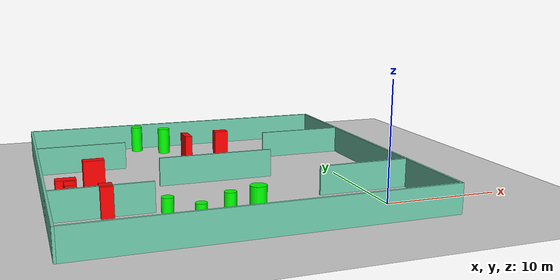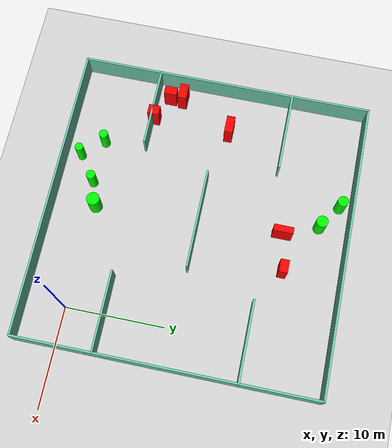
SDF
<sdf version="1.7">
 <world name="default">
  <light name="sun" type="directional">
   <pose>0 0 10 0 -0 0</pose>
   <diffuse>0.8 0.8 0.8 1</diffuse>
   <specular>0.2 0.2 0.2 1</specular>
   <attenuation>
    <range>1000</range>
    <constant>0.9</constant>
    <linear>0.01</linear>
    <quadratic>0.001</quadratic>
   </attenuation>
   <direction>-0.5 0.1 -0.9</direction>
   <spot><inner_angle>0</inner_angle><outer_angle>0</outer_angle><falloff>0</falloff></spot>
  </light>
  <model name="ground_plane">
   <static>1</static>
   <link name="link">
    <collision name="collision">
     <geometry><plane><normal>0 0 1</normal><size>100 100</size></plane></geometry>
     <surface>
      <contact><collide_bitmask>65535</collide_bitmask></contact>
      <friction><ode><mu>100</mu><mu2>50</mu2></ode></friction>
     </surface>
    </collision>
    <visual name="visual">
     <cast_shadows>0</cast_shadows>
     <geometry><plane><normal>0 0 1</normal><size>100 100</size></plane></geometry>
     <material>
      <script><uri>file://media/materials/scripts/gazebo.material</uri><name>Gazebo/Grey</name></script>
     </material>
    </visual>
   </link>
  </model>
  <gravity>0 0 -9.8</gravity>
  <magnetic_field>6e-06 2.3e-05 -4.2e-05</magnetic_field>
  <atmosphere type="adiabatic"/>
  <physics type="ode">
   <max_step_size>0.001</max_step_size>
   <real_time_factor>1</real_time_factor>
   <real_time_update_rate>1000</real_time_update_rate>
  </physics>
  <scene><ambient>0.4 0.4 0.4 1</ambient><background>0.7 0.7 0.7 1</background><shadows>1</shadows></scene>
  <spherical_coordinates>
   <surface_model>EARTH_WGS84</surface_model>
   <latitude_deg>0</latitude_deg>
   <longitude_deg>0</longitude_deg>
   <elevation>0</elevation>
   <heading_deg>0</heading_deg>
  </spherical_coordinates>
  <model name="my_base_walls">
   <link name="Wall_10">
    <collision name="Wall_10_Collision">
     <geometry><box><size>8.2 0.2 2.5</size></box></geometry>
     <pose>0 0 1.25 0 -0 0</pose>
    </collision>
    <visual name="Wall_10_Visual">
     <pose>0 0 1.25 0 -0 0</pose>
     <geometry><box><size>8.2 0.2 2.5</size></box></geometry>
     <material>
      <script><uri>file://media/materials/scripts/gazebo.material</uri><name>Gazebo/Grey</name></script>
      <ambient>0.435294 0.796078 0.67451 1</ambient>
     </material>
     <meta><layer>0</layer></meta>
    </visual>
    <pose>-11 -7 0 0 -0 0</pose>
   </link>
   <link name="Wall_12">
    <collision name="Wall_12_Collision">
     <geometry><box><size>8.2 0.2 2.5</size></box></geometry>
     <pose>0 0 1.25 0 -0 0</pose>
    </collision>
    <visual name="Wall_12_Visual">
     <pose>0 0 1.25 0 -0 0</pose>
     <geometry><box><size>8.2 0.2 2.5</size></box></geometry>
     <material>
      <script><uri>file://media/materials/scripts/gazebo.material</uri><name>Gazebo/Grey</name></script>
      <ambient>0.435294 0.796078 0.67451 1</ambient>
     </material>
     <meta><layer>0</layer></meta>
    </visual>
    <pose>-11 7 0 0 -0 0</pose>
   </link>
   <link name="Wall_14">
    <collision name="Wall_14_Collision">
     <geometry><box><size>8.2 0.2 2.5</size></box></geometry>
     <pose>0 0 1.25 0 -0 0</pose>
    </collision>
    <visual name="Wall_14_Visual">
     <pose>0 0 1.25 0 -0 0</pose>
     <geometry><box><size>8.2 0.2 2.5</size></box></geometry>
     <material>
      <script><uri>file://media/materials/scripts/gazebo.material</uri><name>Gazebo/Grey</name></script>
      <ambient>0.435294 0.796078 0.67451 1</ambient>
     </material>
     <meta><layer>0</layer></meta>
    </visual>
    <pose>11 7 0 0 -0 3.14159</pose>
   </link>
   <link name="Wall_16">
    <collision name="Wall_16_Collision">
     <geometry><box><size>10.2 0.2 2.5</size></box></geometry>
     <pose>0 0 1.25 0 -0 0</pose>
    </collision>
    <visual name="Wall_16_Visual">
     <pose>0 0 1.25 0 -0 0</pose>
     <geometry><box><size>10.2 0.2 2.5</size></box></geometry>
     <material>
      <script><uri>file://media/materials/scripts/gazebo.material</uri><name>Gazebo/Grey</name></script>
      <ambient>0.435294 0.796078 0.67451 1</ambient>
     </material>
     <meta><layer>0</layer></meta>
    </visual>
    <pose>0 0 0 0 -0 3.14159</pose>
   </link>
   <link name="Wall_2">
    <collision name="Wall_2_Collision">
     <geometry><box><size>30.2 0.2 2.5</size></box></geometry>
     <pose>0 0 1.25 0 -0 0</pose>
    </collision>
    <visual name="Wall_2_Visual">
     <pose>0 0 1.25 0 -0 0</pose>
     <geometry><box><size>30.2 0.2 2.5</size></box></geometry>
     <material>
      <script><uri>file://media/materials/scripts/gazebo.material</uri><name>Gazebo/Grey</name></script>
      <ambient>0.435294 0.796078 0.67451 1</ambient>
     </material>
     <meta><layer>0</layer></meta>
    </visual>
    <pose>0 -15 0 0 -0 3.14159</pose>
   </link>
   <link name="Wall_3">
    <collision name="Wall_3_Collision">
     <geometry><box><size>30.2 0.2 2.5</size></box></geometry>
     <pose>0 0 1.25 0 -0 0</pose>
    </collision>
    <visual name="Wall_3_Visual">
     <pose>0 0 1.25 0 -0 0</pose>
     <geometry><box><size>30.2 0.2 2.5</size></box></geometry>
     <material>
      <script><uri>file://media/materials/scripts/gazebo.material</uri><name>Gazebo/Grey</name></script>
      <ambient>0.435294 0.796078 0.67451 1</ambient>
     </material>
     <meta><layer>0</layer></meta>
    </visual>
    <pose>-15 0 0 0 -0 1.5708</pose>
   </link>
   <link name="Wall_4">
    <collision name="Wall_4_Collision">
     <geometry><box><size>30.2 0.2 2.5</size></box></geometry>
     <pose>0 0 1.25 0 -0 0</pose>
    </collision>
    <visual name="Wall_4_Visual">
     <pose>0 0 1.25 0 -0 0</pose>
     <geometry><box><size>30.2 0.2 2.5</size></box></geometry>
     <material>
      <script><uri>file://media/materials/scripts/gazebo.material</uri><name>Gazebo/Grey</name></script>
      <ambient>0.435294 0.796078 0.67451 1</ambient>
     </material>
     <meta><layer>0</layer></meta>
    </visual>
    <pose>0 15 0 0 -0 0</pose>
   </link>
   <link name="Wall_6">
    <collision name="Wall_6_Collision">
     <geometry><box><size>30.2 0.2 2.5</size></box></geometry>
     <pose>0 0 1.25 0 -0 0</pose>
    </collision>
    <visual name="Wall_6_Visual">
     <pose>0 0 1.25 0 -0 0</pose>
     <geometry><box><size>30.2 0.2 2.5</size></box></geometry>
     <material>
      <script><uri>file://media/materials/scripts/gazebo.material</uri><name>Gazebo/Grey</name></script>
      <ambient>0.435294 0.796078 0.67451 1</ambient>
     </material>
     <meta><layer>0</layer></meta>
    </visual>
    <pose>15 0 0 0 -0 1.5708</pose>
   </link>
   <link name="Wall_8">
    <collision name="Wall_8_Collision">
     <geometry><box><size>8.2 0.2 2.5</size></box></geometry>
     <pose>0 0 1.25 0 -0 0</pose>
    </collision>
    <visual name="Wall_8_Visual">
     <pose>0 0 1.25 0 -0 0</pose>
     <geometry><box><size>8.2 0.2 2.5</size></box></geometry>
     <material>
      <script><uri>file://media/materials/scripts/gazebo.material</uri><name>Gazebo/Grey</name></script>
      <ambient>0.435294 0.796078 0.67451 1</ambient>
     </material>
     <meta><layer>0</layer></meta>
    </visual>
    <pose>11 -7 0 0 -0 3.14159</pose>
   </link>
   <static>1</static>
   <pose>-11 11 0 0 -0 0</pose>
  </model>
  <model name="cylinder1">
   <static>1</static>
   <link name="link">
    <inertial>
     <mass>1</mass>
     <inertia><ixx>0.5</ixx><ixy>0</ixy><ixz>0</ixz><iyy>0.5</iyy><iyz>0</iyz><izz>1</izz></inertia>
    </inertial>
    <collision name="collision">
     <geometry><cylinder><radius>0.4578771486237375</radius><length>2.5</length></cylinder></geometry>
    </collision>
    <visual name="visual">
     <geometry><cylinder><radius>0.4578771486237375</radius><length>2.5</length></cylinder></geometry>
     <material>
      <ambient>0 1 0 1</ambient>
      <diffuse>0 1 0 1</diffuse>
      <specular>0.1 0.1 0.1 1</specular>
      <emissive>0 0 0 0</emissive>
     </material>
    </visual>
   </link>
   <pose>-17.8768685657405 -0.2872481390425685 1.25 0 0 0</pose>
  </model>
  <model name="cylinder2">
   <static>1</static>
   <link name="link">
    <inertial>
     <mass>1</mass>
     <inertia><ixx>0.5</ixx><ixy>0</ixy><ixz>0</ixz><iyy>0.5</iyy><iyz>0</iyz><izz>1</izz></inertia>
    </inertial>
    <collision name="collision">
     <geometry><cylinder><radius>0.46499325214693693</radius><length>2.5</length></cylinder></geometry>
    </collision>
    <visual name="visual">
     <geometry><cylinder><radius>0.46499325214693693</radius><length>2.5</length></cylinder></geometry>
     <material>
      <ambient>0 1 0 1</ambient>
      <diffuse>0 1 0 1</diffuse>
      <specular>0.1 0.1 0.1 1</specular>
      <emissive>0 0 0 0</emissive>
     </material>
    </visual>
   </link>
   <pose>-13.267903297246683 -0.4707540925945728 1.25 0 0 0</pose>
  </model>
  <model name="cylinder3">
   <static>1</static>
   <link name="link">
    <inertial>
     <mass>1</mass>
     <inertia><ixx>0.5</ixx><ixy>0</ixy><ixz>0</ixz><iyy>0.5</iyy><iyz>0</iyz><izz>1</izz></inertia>
    </inertial>
    <collision name="collision">
     <geometry><cylinder><radius>0.5433315953063281</radius><length>2.5</length></cylinder></geometry>
    </collision>
    <visual name="visual">
     <geometry><cylinder><radius>0.5433315953063281</radius><length>2.5</length></cylinder></geometry>
     <material>
      <ambient>0 1 0 1</ambient>
      <diffuse>0 1 0 1</diffuse>
      <specular>0.1 0.1 0.1 1</specular>
      <emissive>0 0 0 0</emissive>
     </material>
    </visual>
   </link>
   <pose>-15.605171281681393 24.879241665746303 1.25 0 0 0</pose>
  </model>
  <model name="cylinder4">
   <static>1</static>
   <link name="link">
    <inertial>
     <mass>1</mass>
     <inertia><ixx>0.5</ixx><ixy>0</ixy><ixz>0</ixz><iyy>0.5</iyy><iyz>0</iyz><izz>1</izz></inertia>
    </inertial>
    <collision name="collision">
     <geometry><cylinder><radius>0.6642797098291288</radius><length>2.5</length></cylinder></geometry>
    </collision>
    <visual name="visual">
     <geometry><cylinder><radius>0.6642797098291288</radius><length>2.5</length></cylinder></geometry>
     <material>
      <ambient>0 1 0 1</ambient>
      <diffuse>0 1 0 1</diffuse>
      <specular>0.1 0.1 0.1 1</specular>
      <emissive>0 0 0 0</emissive>
     </material>
    </visual>
   </link>
   <pose>-10.796081657959526 0.39975477381013924 1.25 0 0 0</pose>
  </model>
  <model name="cylinder5">
   <static>1</static>
   <link name="link">
    <inertial>
     <mass>1</mass>
     <inertia><ixx>0.5</ixx><ixy>0</ixy><ixz>0</ixz><iyy>0.5</iyy><iyz>0</iyz><izz>1</izz></inertia>
    </inertial>
    <collision name="collision">
     <geometry><cylinder><radius>0.4284151038005637</radius><length>2.5</length></cylinder></geometry>
    </collision>
    <visual name="visual">
     <geometry><cylinder><radius>0.4284151038005637</radius><length>2.5</length></cylinder></geometry>
     <material>
      <ambient>0 1 0 1</ambient>
      <diffuse>0 1 0 1</diffuse>
      <specular>0.1 0.1 0.1 1</specular>
      <emissive>0 0 0 0</emissive>
     </material>
    </visual>
   </link>
   <pose>-15.96402494400315 -2.379320544138042 1.25 0 0 0</pose>
  </model>
  <model name="cylinder6">
   <static>1</static>
   <link name="link">
    <inertial>
     <mass>1</mass>
     <inertia><ixx>0.5</ixx><ixy>0</ixy><ixz>0</ixz><iyy>0.5</iyy><iyz>0</iyz><izz>1</izz></inertia>
    </inertial>
    <collision name="collision">
     <geometry><cylinder><radius>0.5876870172058148</radius><length>2.5</length></cylinder></geometry>
    </collision>
    <visual name="visual">
     <geometry><cylinder><radius>0.5876870172058148</radius><length>2.5</length></cylinder></geometry>
     <material>
      <ambient>0 1 0 1</ambient>
      <diffuse>0 1 0 1</diffuse>
      <specular>0.1 0.1 0.1 1</specular>
      <emissive>0 0 0 0</emissive>
     </material>
    </visual>
   </link>
   <pose>-13.106889931556701 23.166573714283317 1.25 0 0 0</pose>
  </model>
  <model name="box1">
   <static>1</static>
   <link name="link">
    <inertial>
     <mass>1</mass>
     <inertia><ixx>0.083</ixx><ixy>0</ixy><ixz>0</ixz><iyy>0.083</iyy><iyz>0</iyz><izz>0.083</izz></inertia>
    </inertial>
    <collision name="collision">
     <geometry><box><size>0.8621638303417664 1.3083171467270625 2.5</size></box></geometry>
    </collision>
    <visual name="visual">
     <geometry><box><size>0.8621638303417664 1.3083171467270625 2.5</size></box></geometry>
     <material>
      <ambient>1 0 0 1</ambient>
      <diffuse>1 0 0 1</diffuse>
      <specular>0.1 0.1 0.1 1</specular>
      <emissive>0 0 0 0</emissive>
     </material>
    </visual>
    <sensor name="my_contact" type="contact">
     <contact><collision>box_collision</collision><topic>__default_topic__</topic></contact>
    </sensor>
   </link>
   <pose>-24.11217523049876 5.4405807098653405 1.25 0 0 0</pose>
  </model>
  <model name="box2">
   <static>1</static>
   <link name="link">
    <inertial>
     <mass>1</mass>
     <inertia><ixx>0.083</ixx><ixy>0</ixy><ixz>0</ixz><iyy>0.083</iyy><iyz>0</iyz><izz>0.083</izz></inertia>
    </inertial>
    <collision name="collision">
     <geometry><box><size>1.301599314885923 0.8789457113913088 2.5</size></box></geometry>
    </collision>
    <visual name="visual">
     <geometry><box><size>1.301599314885923 0.8789457113913088 2.5</size></box></geometry>
     <material>
      <ambient>1 0 0 1</ambient>
      <diffuse>1 0 0 1</diffuse>
      <specular>0.1 0.1 0.1 1</specular>
      <emissive>0 0 0 0</emissive>
     </material>
    </visual>
    <sensor name="my_contact" type="contact">
     <contact><collision>box_collision</collision><topic>__default_topic__</topic></contact>
    </sensor>
   </link>
   <pose>-7.8909775630519 20.246162969900755 1.25 0 0 0</pose>
  </model>
  <model name="box3">
   <static>1</static>
   <link name="link">
    <inertial>
     <mass>1</mass>
     <inertia><ixx>0.083</ixx><ixy>0</ixy><ixz>0</ixz><iyy>0.083</iyy><iyz>0</iyz><izz>0.083</izz></inertia>
    </inertial>
    <collision name="collision">
     <geometry><box><size>0.6624449048954139 1.9965016454379425 2.5</size></box></geometry>
    </collision>
    <visual name="visual">
     <geometry><box><size>0.6624449048954139 1.9965016454379425 2.5</size></box></geometry>
     <material>
      <ambient>1 0 0 1</ambient>
      <diffuse>1 0 0 1</diffuse>
      <specular>0.1 0.1 0.1 1</specular>
      <emissive>0 0 0 0</emissive>
     </material>
    </visual>
    <sensor name="my_contact" type="contact">
     <contact><collision>box_collision</collision><topic>__default_topic__</topic></contact>
    </sensor>
   </link>
   <pose>-11.576995847167058 19.569477753050677 1.25 0 0 0</pose>
  </model>
  <model name="box4">
   <static>1</static>
   <link name="link">
    <inertial>
     <mass>1</mass>
     <inertia><ixx>0.083</ixx><ixy>0</ixy><ixz>0</ixz><iyy>0.083</iyy><iyz>0</iyz><izz>0.083</izz></inertia>
    </inertial>
    <collision name="collision">
     <geometry><box><size>1.807404927520782 0.8648309668276346 2.5</size></box></geometry>
    </collision>
    <visual name="visual">
     <geometry><box><size>1.807404927520782 0.8648309668276346 2.5</size></box></geometry>
     <material>
      <ambient>1 0 0 1</ambient>
      <diffuse>1 0 0 1</diffuse>
      <specular>0.1 0.1 0.1 1</specular>
      <emissive>0 0 0 0</emissive>
     </material>
    </visual>
    <sensor name="my_contact" type="contact">
     <contact><collision>box_collision</collision><topic>__default_topic__</topic></contact>
    </sensor>
   </link>
   <pose>-21.56332667671327 12.210863943816717 1.25 0 0 0</pose>
  </model>
  <model name="box5">
   <static>1</static>
   <link name="link">
    <inertial>
     <mass>1</mass>
     <inertia><ixx>0.083</ixx><ixy>0</ixy><ixz>0</ixz><iyy>0.083</iyy><iyz>0</iyz><izz>0.083</izz></inertia>
    </inertial>
    <collision name="collision">
     <geometry><box><size>1.6085474890399545 0.8968338543749963 2.5</size></box></geometry>
    </collision>
    <visual name="visual">
     <geometry><box><size>1.6085474890399545 0.8968338543749963 2.5</size></box></geometry>
     <material>
      <ambient>1 0 0 1</ambient>
      <diffuse>1 0 0 1</diffuse>
      <specular>0.1 0.1 0.1 1</specular>
      <emissive>0 0 0 0</emissive>
     </material>
    </visual>
    <sensor name="my_contact" type="contact">
     <contact><collision>box_collision</collision><topic>__default_topic__</topic></contact>
    </sensor>
   </link>
   <pose>-24.324221527359875 6.730871070377766 1.25 0 0 0</pose>
  </model>
  <model name="box6">
   <static>1</static>
   <link name="link">
    <inertial>
     <mass>1</mass>
     <inertia><ixx>0.083</ixx><ixy>0</ixy><ixz>0</ixz><iyy>0.083</iyy><iyz>0</iyz><izz>0.083</izz></inertia>
    </inertial>
    <collision name="collision">
     <geometry><box><size>1.0146400699346716 1.1805859527484313 2.5</size></box></geometry>
    </collision>
    <visual name="visual">
     <geometry><box><size>1.0146400699346716 1.1805859527484313 2.5</size></box></geometry>
     <material>
      <ambient>1 0 0 1</ambient>
      <diffuse>1 0 0 1</diffuse>
      <specular>0.1 0.1 0.1 1</specular>
      <emissive>0 0 0 0</emissive>
     </material>
    </visual>
    <sensor name="my_contact" type="contact">
     <contact><collision>box_collision</collision><topic>__default_topic__</topic></contact>
    </sensor>
   </link>
   <pose>-21.599016493712604 4.17999893044227 1.25 0 0 0</pose>
  </model>
 </world>
</sdf>
